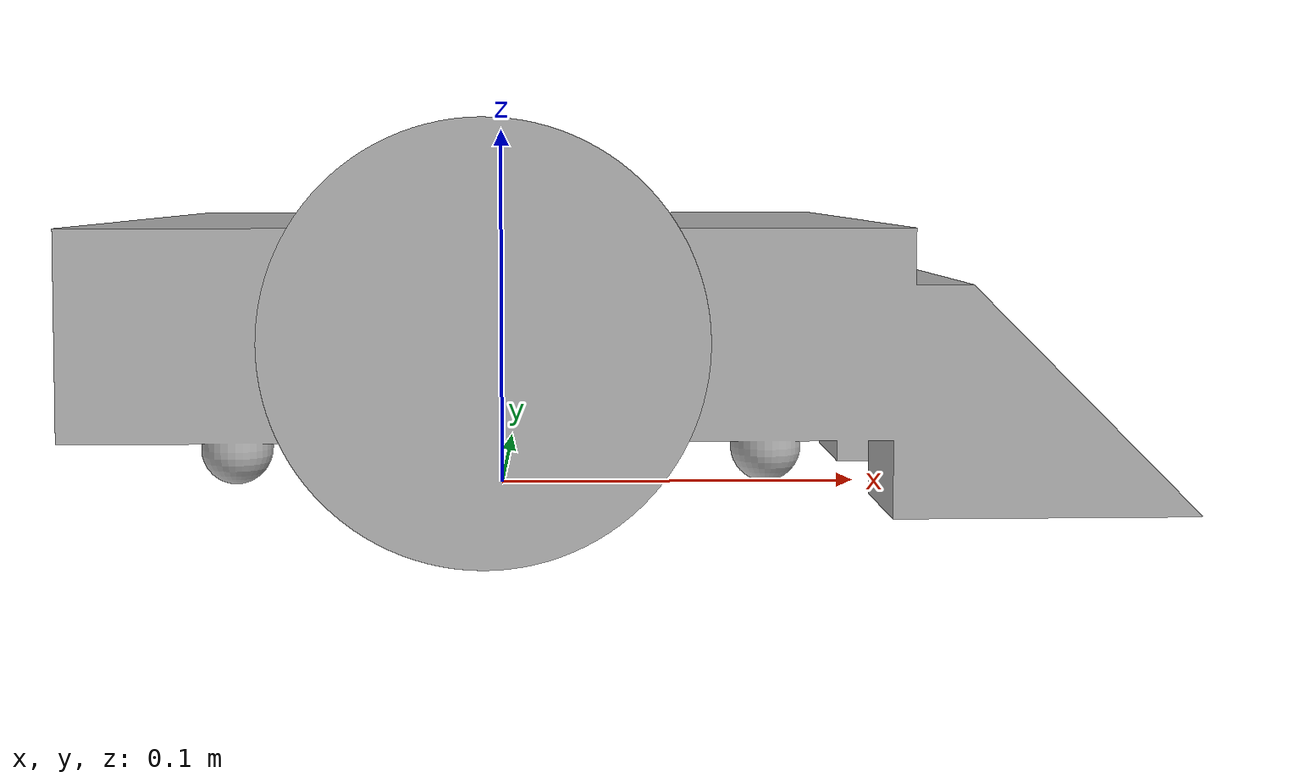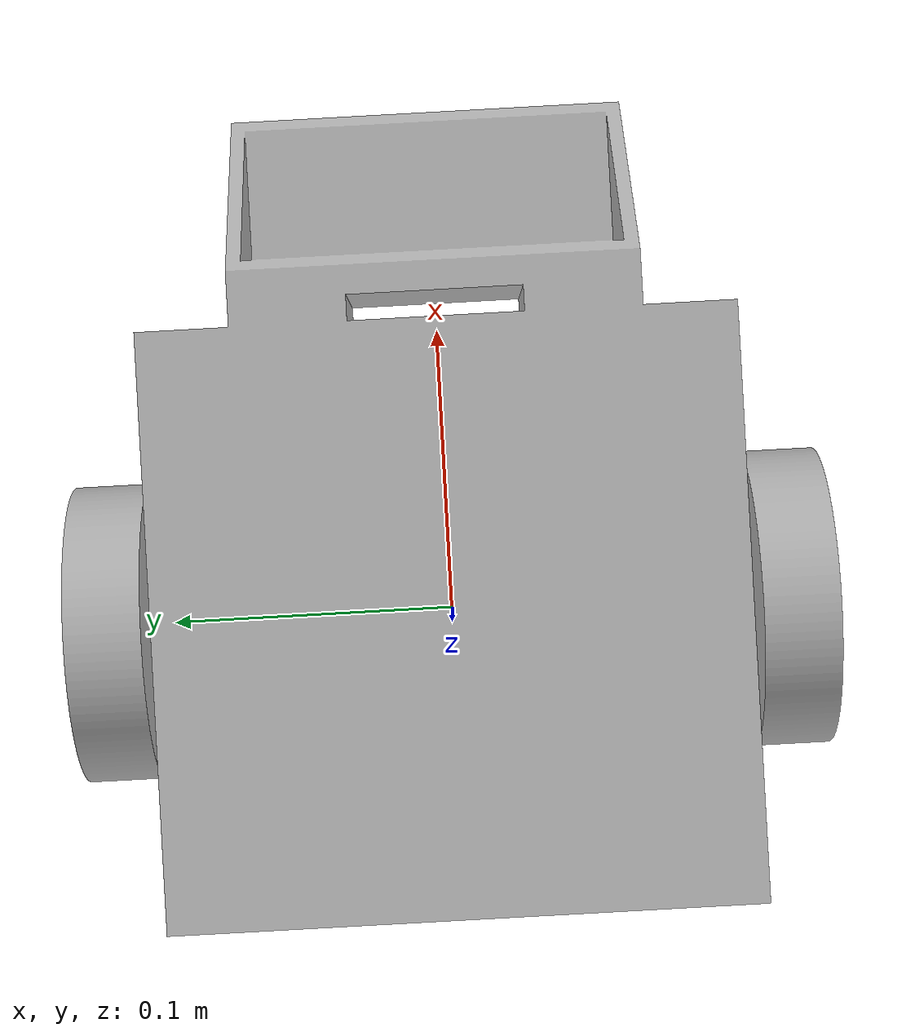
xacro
<?xml version="1.0" ?>
<robot name="myrobot_camera" xmlns:xacro="http://www.ros.org/wiki/xacro">

<xacro:include filename="$(find myrobot_camera_description)/urdf/materials.xacro" />
<xacro:include filename="$(find myrobot_camera_description)/urdf/myrobot_camera.trans" />
<xacro:include filename="$(find myrobot_camera_description)/urdf/myrobot_camera.gazebo" />
<link name="base_link">
  <inertial>
    <origin xyz="0.006355291024288206 -1.717650887223425e-17 0.048350435240959735" rpy="0 0 0"/>
    <mass value="2.245076437943009"/>
    <inertia ixx="0.00791" iyy="0.009471" izz="0.0162" ixy="-0.0" iyz="-0.0" ixz="0.000412"/>
  </inertial>
  <visual>
    <origin xyz="0 0 0" rpy="0 0 0"/>
    <geometry>
      <mesh filename="package://myrobot_camera_description/meshes/base_link.stl" scale="0.001 0.001 0.001"/>
    </geometry>
    <material name="silver"/>
  </visual>
  <collision>
    <origin xyz="0 0 0" rpy="0 0 0"/>
    <geometry>
      <mesh filename="package://myrobot_camera_description/meshes/base_link.stl" scale="0.001 0.001 0.001"/>
    </geometry>
  </collision>
</link>

<link name="right_wheel_1">
  <inertial>
    <origin xyz="-5.790023100122029e-18 -0.012499999999999997 0.0" rpy="0 0 0"/>
    <mass value="0.2797980957103409"/>
    <inertia ixx="0.000189" iyy="0.00035" izz="0.000189" ixy="-0.0" iyz="-0.0" ixz="0.0"/>
  </inertial>
  <visual>
    <origin xyz="-0.0 0.1 -0.05" rpy="0 0 0"/>
    <geometry>
      <mesh filename="package://myrobot_camera_description/meshes/right_wheel_1.stl" scale="0.001 0.001 0.001"/>
    </geometry>
    <material name="silver"/>
  </visual>
  <collision>
    <origin xyz="-0.0 0.1 -0.05" rpy="0 0 0"/>
    <geometry>
      <mesh filename="package://myrobot_camera_description/meshes/right_wheel_1.stl" scale="0.001 0.001 0.001"/>
    </geometry>
  </collision>
</link>

<link name="left_wheel_1">
  <inertial>
    <origin xyz="-5.790023100122029e-18 0.012499999999999997 0.0" rpy="0 0 0"/>
    <mass value="0.2797980957103409"/>
    <inertia ixx="0.000189" iyy="0.00035" izz="0.000189" ixy="0.0" iyz="0.0" ixz="0.0"/>
  </inertial>
  <visual>
    <origin xyz="-0.0 -0.1 -0.05" rpy="0 0 0"/>
    <geometry>
      <mesh filename="package://myrobot_camera_description/meshes/left_wheel_1.stl" scale="0.001 0.001 0.001"/>
    </geometry>
    <material name="silver"/>
  </visual>
  <collision>
    <origin xyz="-0.0 -0.1 -0.05" rpy="0 0 0"/>
    <geometry>
      <mesh filename="package://myrobot_camera_description/meshes/left_wheel_1.stl" scale="0.001 0.001 0.001"/>
    </geometry>
  </collision>
</link>

<joint name="Revolute 1" type="continuous">
  <origin xyz="0.0 -0.1 0.05" rpy="0 0 0"/>
  <parent link="base_link"/>
  <child link="right_wheel_1"/>
  <axis xyz="0.0 1.0 0.0"/>
</joint>

<joint name="Revolute 2" type="continuous">
  <origin xyz="0.0 0.1 0.05" rpy="0 0 0"/>
  <parent link="base_link"/>
  <child link="left_wheel_1"/>
  <axis xyz="0.0 1.0 0.0"/>
</joint>

</robot>

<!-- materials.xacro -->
<robot name="myrobot_camera" xmlns:xacro="http://www.ros.org/wiki/xacro" >

<material name="silver">
  <color rgba="0.700 0.700 0.700 1.000"/>
</material>

</robot>

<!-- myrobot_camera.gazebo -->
<robot name="myrobot_camera" xmlns:xacro="http://www.ros.org/wiki/xacro" >

<xacro:property name="body_color" value="Gazebo/Silver" />

<gazebo>
  <plugin name="control" filename="libgazebo_ros_control.so"/>
</gazebo>
<gazebo reference="base_link">
  <material>${body_color}</material>
  <mu1>0.1</mu1>
  <mu2>0.1</mu2>
  <selfCollide>true</selfCollide>
  <gravity>true</gravity>
</gazebo>

<gazebo reference="right_wheel_1">
  <material>${body_color}</material>
  <mu1>1500</mu1>
  <mu2>1500</mu2>
  <selfCollide>true</selfCollide>
</gazebo>

<gazebo reference="left_wheel_1">
  <material>${body_color}</material>
  <mu1>1500</mu1>
  <mu2>1500</mu2>
  <selfCollide>true</selfCollide>
</gazebo>

<gazebo>
  <plugin name="differential_drive_controller" filename="libgazebo_ros_diff_drive.so">

    <!-- Plugin update rate in Hz -->
    <updateRate>100</updateRate>

    <!-- Name of left joint, defaults to `left_joint` -->
    <leftJoint>Revolute 2</leftJoint>

    <!-- Name of right joint, defaults to `right_joint` -->
    <rightJoint>Revolute 1</rightJoint>

    <!-- The distance from the center of one wheel to the other, in meters, defaults to 0.34 m -->
    <wheelSeparation>0.2</wheelSeparation>

    <!-- Diameter of the wheels, in meters, defaults to 0.15 m -->
    <wheelDiameter>0.1</wheelDiameter>

    <!-- Wheel acceleration, in rad/s^2, defaults to 0.0 rad/s^2 -->
    <wheelAcceleration>1.0</wheelAcceleration>

    <!-- Maximum torque which the wheels can produce, in Nm, defaults to 5 Nm -->
    <wheelTorque>50</wheelTorque>

    <!-- Topic to receive geometry_msgs/Twist message commands, defaults to `cmd_vel` -->
    <commandTopic>cmd_vel</commandTopic>

    <!-- Topic to publish nav_msgs/Odometry messages, defaults to `odom` -->
    <odometryTopic>odom</odometryTopic>

    <!-- Odometry frame, defaults to `odom` -->
    <odometryFrame>odom</odometryFrame>

    <!-- Robot frame to calculate odometry from, defaults to `base_footprint` -->
    <robotBaseFrame>base_link</robotBaseFrame>

    <!-- Odometry source, 0 for ENCODER, 1 for WORLD, defaults to WORLD -->
    <odometrySource>1</odometrySource>

    <!-- Set to true to publish transforms for the wheel links, defaults to false -->
    <publishWheelTF>true</publishWheelTF>

    <!-- Set to true to publish transforms for the odometry, defaults to true -->
    <publishOdom>true</publishOdom>

    <!-- Set to true to publish sensor_msgs/JointState on /joint_states for the wheel joints, defaults to false -->
    <publishWheelJointState>true</publishWheelJointState>

    <!-- Set to true to swap right and left wheels, defaults to true -->
    <legacyMode>false</legacyMode>
  </plugin>
</gazebo>

</robot>
